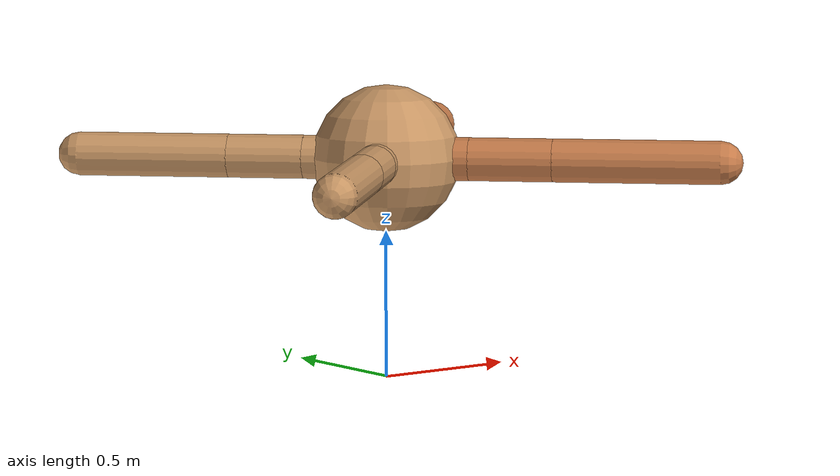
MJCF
<?xml version="1.0" ?>
<mujoco model="ant">

	<compiler angle="degree" coordinate="local" inertiafromgeom="true"/>

	<option integrator="RK4" timestep="0.01"/>

	<custom>

		<numeric data="0.0 0.0 0.55 1.0 0.0 0.0 0.0 0.0 1.0 0.0 -1.0 0.0 -1.0 0.0 1.0" name="init_qpos"/>

	</custom>

	<default>

		<joint armature="1" damping="1" limited="true"/>

		<geom conaffinity="0" condim="3" density="5.0" friction="1.5 0.1 0.1" margin="0.01" rgba="0.8 0.6 0.4 1"/>

	</default>

	<worldbody>

		<body name="torso" pos="0 0 0.75">

			<geom name="torso_geom" pos="0 0 0" size="0.25052245707842835" type="sphere"/>

			<!--joint armature="0" damping="0" limited="false" margin="0.01" name="root" pos="0 0 0" type="free"/-->

			<body name="front_left_leg" pos="0 0 0">

				<geom fromto="0 0 0 0.2 0.2 0" name="aux_1_geom" size="0.08417804713332076" type="capsule" rgba=".8 .5 .3 1"/>

				<body name="aux_1" pos="0.2 0.2 0">

					<joint axis="0 0 1" name="hip_1" pos="0.0 0.0 0.0" range="-40 40" type="hinge"/>

					<geom fromto="0 0 0 0.2125164199735924 0.2125164199735924 0" name="left_leg_geom" size="0.08417804713332076" type="capsule" rgba=".8 .5 .3 1"/>

					<body pos="0.2125164199735924 0.2125164199735924 0" name="front_left_foot">

						<joint axis="-1 1 0" name="ankle_1" pos="0.0 0.0 0.0" range="30 100" type="hinge"/>

						<geom fromto="0 0 0 0.4250328399471848 0.4250328399471848 0" name="left_ankle_geom" size="0.08417804713332076" type="capsule" rgba=".8 .5 .3 1"/>

					</body>

				</body>

			</body>

			<body name="front_right_leg" pos="0 0 0">

				<geom fromto="0 0 0 -0.2 0.2 0" name="aux_2_geom" size="0.07441277683268639" type="capsule"/>

				<body name="aux_2" pos="-0.2 0.2 0">

					<joint axis="0 0 1" name="hip_2" pos="0.0 0.0 0.0" range="-40 40" type="hinge"/>

					<geom fromto="0 0 0 -0.18328924541742528 0.18328924541742528 0" name="right_leg_geom" size="0.07441277683268639" type="capsule"/>

					<body pos="-0.18328924541742528 0.18328924541742528 0" name="front_right_foot">

						<joint axis="1 1 0" name="ankle_2" pos="0.0 0.0 0.0" range="-100 -30" type="hinge"/>

						<geom fromto="0 0 0 -0.36657849083485056 0.36657849083485056 0" name="right_ankle_geom" size="0.07441277683268639" type="capsule"/>

					</body>

				</body>

			</body>

			<body name="left_back_leg" pos="0 0 0">

				<geom fromto="0 0 0 -0.2 -0.2 0" name="aux_3_geom" size="0.07216559927408309" type="capsule"/>

				<body name="aux_3" pos="-0.2 -0.2 0">

					<joint axis="0 0 1" name="hip_3" pos="0.0 0.0 0.0" range="-40 40" type="hinge"/>

					<geom fromto="0 0 0 -0.19979392547922784 -0.19979392547922784 0" name="back_leg_geom" size="0.07216559927408309" type="capsule"/>

					<body pos="-0.19979392547922784 -0.19979392547922784 0" name="left_back_foot">

						<joint axis="-1 1 0" name="ankle_3" pos="0.0 0.0 0.0" range="-100 -30" type="hinge"/>

						<geom fromto="0 0 0 -0.39958785095845567 -0.39958785095845567 0" name="third_ankle_geom" size="0.07216559927408309" type="capsule"/>

					</body>

				</body>

			</body>

			<body name="right_back_leg" pos="0 0 0">

				<geom fromto="0 0 0 0.2 -0.2 0" name="aux_4_geom" size="0.07359845080413747" type="capsule" rgba=".8 .5 .3 1"/>

				<body name="aux_4" pos="0.2 -0.2 0">

					<joint axis="0 0 1" name="hip_4" pos="0.0 0.0 0.0" range="-40 40" type="hinge"/>

					<geom fromto="0 0 0 0.20095569794826434 -0.20095569794826434 0" name="rightback_leg_geom" size="0.07359845080413747" type="capsule" rgba=".8 .5 .3 1"/>

					<body pos="0.20095569794826434 -0.20095569794826434 0" name="right_back_foot">

						<joint axis="1 1 0" name="ankle_4" pos="0.0 0.0 0.0" range="30 100" type="hinge"/>

						<geom fromto="0 0 0 0.4019113958965287 -0.4019113958965287 0" name="fourth_ankle_geom" size="0.07359845080413747" type="capsule" rgba=".8 .5 .3 1"/>

					</body>

				</body>

			</body>

		</body>

	</worldbody>

	<actuator>

		<motor ctrllimited="true" ctrlrange="-1.0 1.0" joint="hip_4" gear="150"/>

		<motor ctrllimited="true" ctrlrange="-1.0 1.0" joint="ankle_4" gear="150"/>

		<motor ctrllimited="true" ctrlrange="-1.0 1.0" joint="hip_1" gear="150"/>

		<motor ctrllimited="true" ctrlrange="-1.0 1.0" joint="ankle_1" gear="150"/>

		<motor ctrllimited="true" ctrlrange="-1.0 1.0" joint="hip_2" gear="150"/>

		<motor ctrllimited="true" ctrlrange="-1.0 1.0" joint="ankle_2" gear="150"/>

		<motor ctrllimited="true" ctrlrange="-1.0 1.0" joint="hip_3" gear="150"/>

		<motor ctrllimited="true" ctrlrange="-1.0 1.0" joint="ankle_3" gear="150"/>

	</actuator>

</mujoco>
